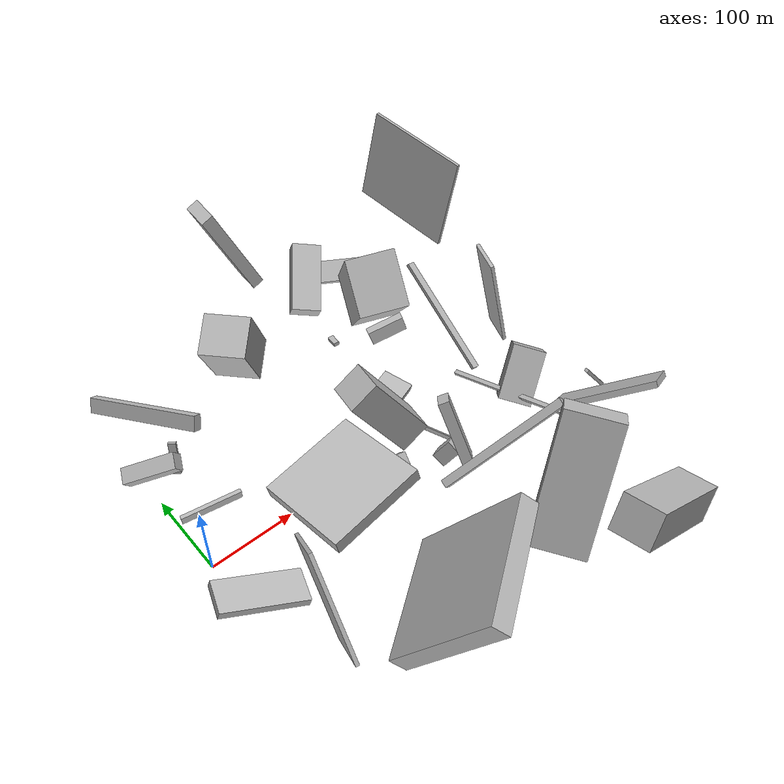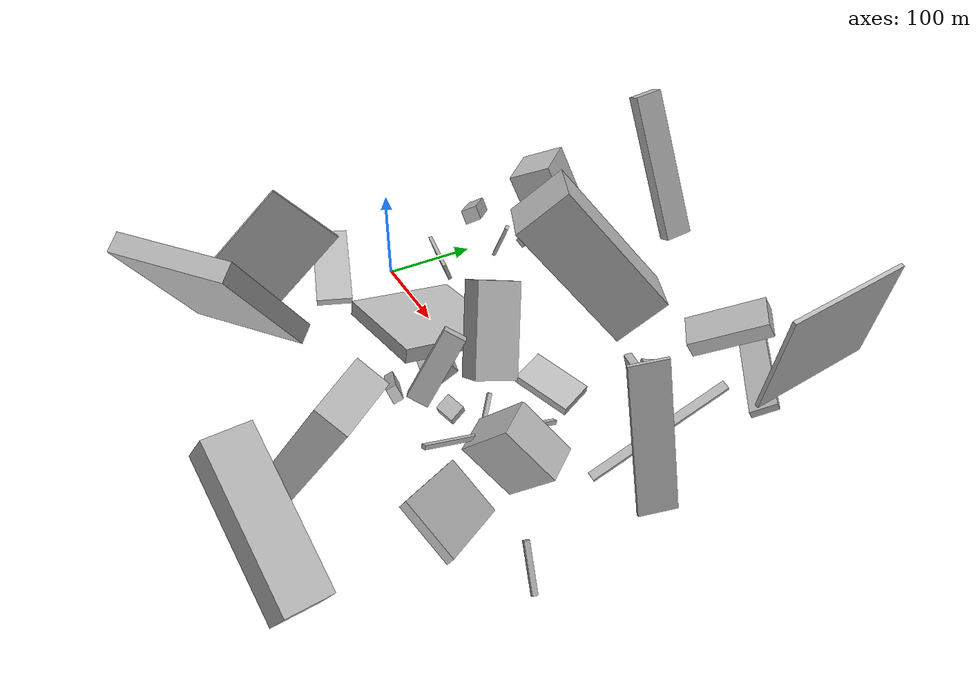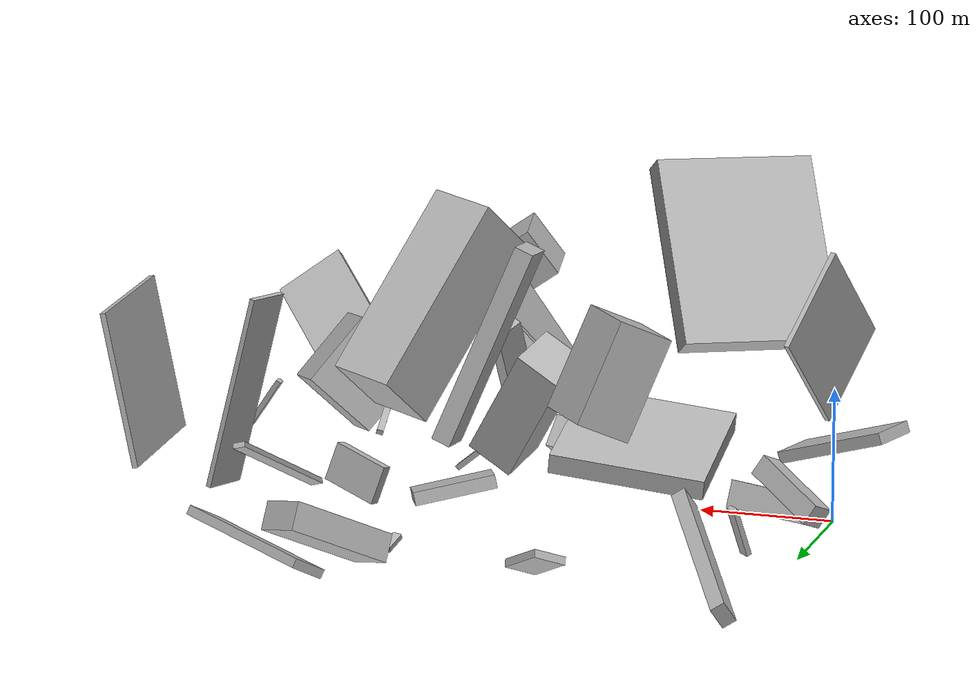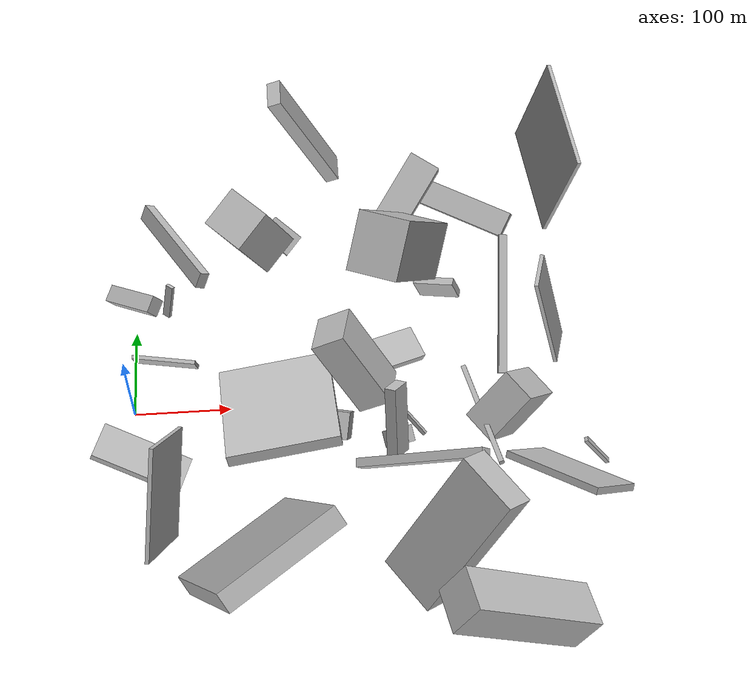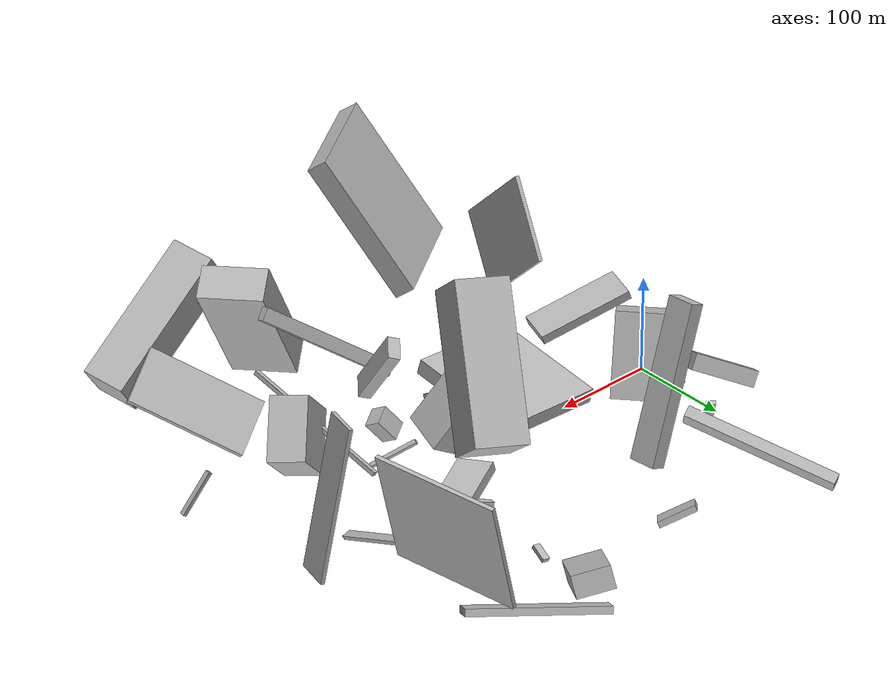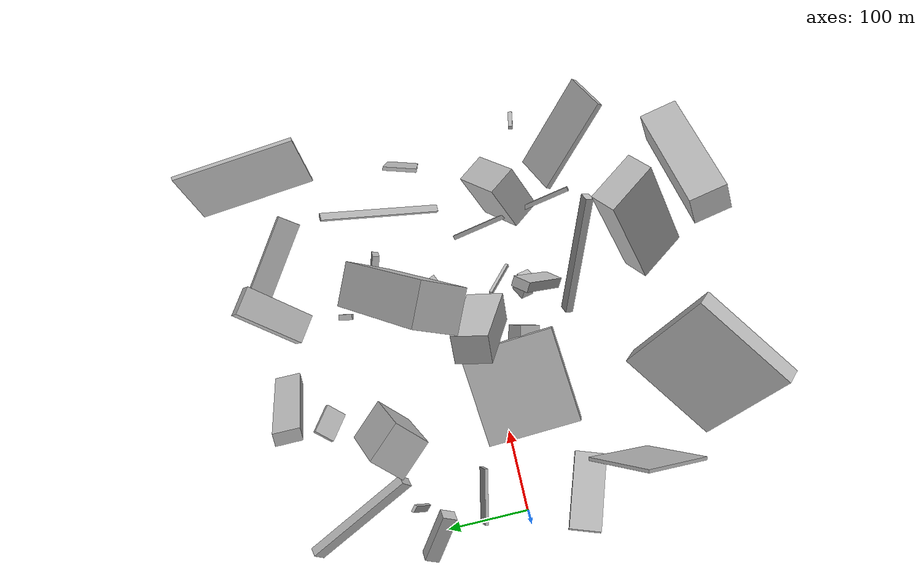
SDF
<sdf version="1.6">
 <world name="default">
  <scene>
   <sky><clouds><speed>12</speed></clouds></sky>
   <ambient>0.4 0.4 0.4 1</ambient>
   <background>0.7 0.7 0.7 1</background>
   <shadows>1</shadows>
  </scene>
  <gravity>0 0 -9.8066</gravity>
  <magnetic_field>6e-06 2.3e-05 -4.2e-05</magnetic_field>
  <physics default="0" name="default_physics" type="ode">
   <ode>
    <solver>
     <type>quick</type>
     <iters>10</iters>
     <sor>1.0</sor>
     <use_dynamic_moi_rescaling>0</use_dynamic_moi_rescaling>
    </solver>
    <constraints>
     <cfm>0</cfm>
     <erp>0.2</erp>
     <contact_max_correcting_vel>100</contact_max_correcting_vel>
     <contact_surface_layer>0.001</contact_surface_layer>
    </constraints>
   </ode>
   <max_step_size>0.004</max_step_size>
   <real_time_factor>1</real_time_factor>
   <real_time_update_rate>250</real_time_update_rate>
  </physics>
  <light name="sun" type="directional">
   <pose>0 0 10 0 0 0</pose>
   <diffuse>0.8 0.8 0.8 1</diffuse>
   <specular>0.2 0.2 0.2 1</specular>
   <attenuation>
    <range>1000</range>
    <constant>0.9</constant>
    <linear>0.01</linear>
    <quadratic>0.001</quadratic>
   </attenuation>
   <direction>-0.5 0.1 -0.9</direction>
  </light>
  <model name="building_1">
   <static>0</static>
   <pose>302.7162178413823 241.01590232890726 44.38932893676258 -2.902365559307003 -0.44359918086445965 0.9013394924459838</pose>
   <link name="link">
    <gravity>0</gravity>
    <pose>0 0 10.5 0 0 0</pose>
    <collision name="collision"><geometry><box><size>86 36 21</size></box></geometry></collision>
    <visual name="visual">
     <cast_shadows>0</cast_shadows>
     <geometry><box><size>86 36 21</size></box></geometry>
     <material>
      <script>
       <uri>model://HANNAS_wall/materials/scripts</uri>
       <uri>model://HANNAS_wall/materials/textures</uri>
       <name>vrc/HANNAS_wall</name>
      </script>
     </material>
    </visual>
   </link>
  </model>
  <model name="building_2">
   <static>0</static>
   <pose>292.9335709970639 -173.6135576637166 95.51728140433362 1.7060306095663793 -0.9956699623884142 0.500943199258239</pose>
   <link name="link">
    <gravity>0</gravity>
    <pose>0 0 31.5 0 0 0</pose>
    <collision name="collision"><geometry><box><size>150 33 63</size></box></geometry></collision>
    <visual name="visual">
     <cast_shadows>0</cast_shadows>
     <geometry><box><size>150 33 63</size></box></geometry>
     <material>
      <script>
       <uri>model://HANNAS_wall/materials/scripts</uri>
       <uri>model://HANNAS_wall/materials/textures</uri>
       <name>vrc/HANNAS_wall</name>
      </script>
     </material>
    </visual>
   </link>
  </model>
  <model name="building_3">
   <static>0</static>
   <pose>108.250264848496 -191.85583025716107 75.37563221815003 -0.5998151161141145 0.04529181704644182 -2.5248433843970703</pose>
   <link name="link">
    <gravity>0</gravity>
    <pose>0 0 75.0 0 0 0</pose>
    <collision name="collision"><geometry><box><size>125 20 150</size></box></geometry></collision>
    <visual name="visual">
     <cast_shadows>0</cast_shadows>
     <geometry><box><size>125 20 150</size></box></geometry>
     <material>
      <script>
       <uri>model://HANNAS_wall/materials/scripts</uri>
       <uri>model://HANNAS_wall/materials/textures</uri>
       <name>vrc/HANNAS_wall</name>
      </script>
     </material>
    </visual>
   </link>
  </model>
  <model name="building_4">
   <static>0</static>
   <pose>161.3359869374908 209.520294318713 18.49053893777691 2.6842150982529867 0.36401803303622693 -2.3480619277715666</pose>
   <link name="link">
    <gravity>0</gravity>
    <pose>0 0 3.0 0 0 0</pose>
    <collision name="collision"><geometry><box><size>26 37 6</size></box></geometry></collision>
    <visual name="visual">
     <cast_shadows>0</cast_shadows>
     <geometry><box><size>26 37 6</size></box></geometry>
     <material>
      <script>
       <uri>model://HANNAS_wall/materials/scripts</uri>
       <uri>model://HANNAS_wall/materials/textures</uri>
       <name>vrc/HANNAS_wall</name>
      </script>
     </material>
    </visual>
   </link>
  </model>
  <model name="building_5">
   <static>0</static>
   <pose>205.2655500838673 -54.13351261544445 24.35102530227648 0.1326448733024573 -0.9701547154076232 -1.9265548579887706</pose>
   <link name="link">
    <gravity>0</gravity>
    <pose>0 0 14.0 0 0 0</pose>
    <collision name="collision"><geometry><box><size>25 32 28</size></box></geometry></collision>
    <visual name="visual">
     <cast_shadows>0</cast_shadows>
     <geometry><box><size>25 32 28</size></box></geometry>
     <material>
      <script>
       <uri>model://HANNAS_wall/materials/scripts</uri>
       <uri>model://HANNAS_wall/materials/textures</uri>
       <name>vrc/HANNAS_wall</name>
      </script>
     </material>
    </visual>
   </link>
  </model>
  <model name="building_6">
   <static>0</static>
   <pose>148.10769394676794 31.116583684082627 29.28322589035719 -0.5602564760390539 -1.346978368066522 2.204196110590336</pose>
   <link name="link">
    <gravity>0</gravity>
    <pose>0 0 57.5 0 0 0</pose>
    <collision name="collision"><geometry><box><size>15 116 115</size></box></geometry></collision>
    <visual name="visual">
     <cast_shadows>0</cast_shadows>
     <geometry><box><size>15 116 115</size></box></geometry>
     <material>
      <script>
       <uri>model://HANNAS_wall/materials/scripts</uri>
       <uri>model://HANNAS_wall/materials/textures</uri>
       <name>vrc/HANNAS_wall</name>
      </script>
     </material>
    </visual>
   </link>
  </model>
  <model name="building_7">
   <static>0</static>
   <pose>246.38568938136544 5.6856705602654625 81.63812656405128 2.1430466931723364 -0.23602771377892645 -1.7809673171588272</pose>
   <link name="link">
    <gravity>0</gravity>
    <pose>0 0 18.5 0 0 0</pose>
    <collision name="collision"><geometry><box><size>44 96 37</size></box></geometry></collision>
    <visual name="visual">
     <cast_shadows>0</cast_shadows>
     <geometry><box><size>44 96 37</size></box></geometry>
     <material>
      <script>
       <uri>model://HANNAS_wall/materials/scripts</uri>
       <uri>model://HANNAS_wall/materials/textures</uri>
       <name>vrc/HANNAS_wall</name>
      </script>
     </material>
    </visual>
   </link>
  </model>
  <model name="building_8">
   <static>0</static>
   <pose>361.5080734168912 -249.57497258874136 75.27403421988694 1.387160893105382 -0.9438212615000647 0.3315941093290841</pose>
   <link name="link">
    <gravity>0</gravity>
    <pose>0 0 22.5 0 0 0</pose>
    <collision name="collision"><geometry><box><size>41 150 45</size></box></geometry></collision>
    <visual name="visual">
     <cast_shadows>0</cast_shadows>
     <geometry><box><size>41 150 45</size></box></geometry>
     <material>
      <script>
       <uri>model://HANNAS_wall/materials/scripts</uri>
       <uri>model://HANNAS_wall/materials/textures</uri>
       <name>vrc/HANNAS_wall</name>
      </script>
     </material>
    </visual>
   </link>
  </model>
  <model name="building_9">
   <static>0</static>
   <pose>144.271741674375 141.05816768258543 98.68790981412013 0.4364650986038138 -0.024673798803720566 -0.8231511181272085</pose>
   <link name="link">
    <gravity>0</gravity>
    <pose>0 0 39.5 0 0 0</pose>
    <collision name="collision"><geometry><box><size>49 44 79</size></box></geometry></collision>
    <visual name="visual">
     <cast_shadows>0</cast_shadows>
     <geometry><box><size>49 44 79</size></box></geometry>
     <material>
      <script>
       <uri>model://HANNAS_wall/materials/scripts</uri>
       <uri>model://HANNAS_wall/materials/textures</uri>
       <name>vrc/HANNAS_wall</name>
      </script>
     </material>
    </visual>
   </link>
  </model>
  <model name="building_10">
   <static>0</static>
   <pose>284.47600972906247 -32.08731425602233 17.480578366958273 -2.244910018783308 -0.8155858425216458 0.0974620588663942</pose>
   <link name="link">
    <gravity>0</gravity>
    <pose>0 0 2.0 0 0 0</pose>
    <collision name="collision"><geometry><box><size>4 49 4</size></box></geometry></collision>
    <visual name="visual">
     <cast_shadows>0</cast_shadows>
     <geometry><box><size>4 49 4</size></box></geometry>
     <material>
      <script>
       <uri>model://HANNAS_wall/materials/scripts</uri>
       <uri>model://HANNAS_wall/materials/textures</uri>
       <name>vrc/HANNAS_wall</name>
      </script>
     </material>
    </visual>
   </link>
  </model>
  <model name="building_11">
   <static>0</static>
   <pose>433.00837355612003 52.79903836393758 76.62054983826607 1.3394015480919081 -0.0735480670114432 1.2871735322263957</pose>
   <link name="link">
    <gravity>0</gravity>
    <pose>0 0 2.0 0 0 0</pose>
    <collision name="collision"><geometry><box><size>37 150 4</size></box></geometry></collision>
    <visual name="visual">
     <cast_shadows>0</cast_shadows>
     <geometry><box><size>37 150 4</size></box></geometry>
     <material>
      <script>
       <uri>model://HANNAS_wall/materials/scripts</uri>
       <uri>model://HANNAS_wall/materials/textures</uri>
       <name>vrc/HANNAS_wall</name>
      </script>
     </material>
    </visual>
   </link>
  </model>
  <model name="building_12">
   <static>0</static>
   <pose>426.823543539417 -139.7803070604047 80.99842091398868 0.6080393082296806 -0.5960556789041367 -2.7482518101059674</pose>
   <link name="link">
    <gravity>0</gravity>
    <pose>0 0 3.5 0 0 0</pose>
    <collision name="collision"><geometry><box><size>55 115 7</size></box></geometry></collision>
    <visual name="visual">
     <cast_shadows>0</cast_shadows>
     <geometry><box><size>55 115 7</size></box></geometry>
     <material>
      <script>
       <uri>model://HANNAS_wall/materials/scripts</uri>
       <uri>model://HANNAS_wall/materials/textures</uri>
       <name>vrc/HANNAS_wall</name>
      </script>
     </material>
    </visual>
   </link>
  </model>
  <model name="building_13">
   <static>0</static>
   <pose>330.5395586814878 115.66253531808869 26.442098687629755 0.1848036161673816 -0.2775254316448853 -0.3306662051917016</pose>
   <link name="link">
    <gravity>0</gravity>
    <pose>0 0 14.5 0 0 0</pose>
    <collision name="collision"><geometry><box><size>44 8 29</size></box></geometry></collision>
    <visual name="visual">
     <cast_shadows>0</cast_shadows>
     <geometry><box><size>44 8 29</size></box></geometry>
     <material>
      <script>
       <uri>model://HANNAS_wall/materials/scripts</uri>
       <uri>model://HANNAS_wall/materials/textures</uri>
       <name>vrc/HANNAS_wall</name>
      </script>
     </material>
    </visual>
   </link>
  </model>
  <model name="building_14">
   <static>0</static>
   <pose>-20.53171304835159 125.55125011897982 40.69571973885292 0.7919973872937769 0.9995951452825004 0.2544798049285915</pose>
   <link name="link">
    <gravity>0</gravity>
    <pose>0 0 31.5 0 0 0</pose>
    <collision name="collision"><geometry><box><size>16 18 63</size></box></geometry></collision>
    <visual name="visual">
     <cast_shadows>0</cast_shadows>
     <geometry><box><size>16 18 63</size></box></geometry>
     <material>
      <script>
       <uri>model://HANNAS_wall/materials/scripts</uri>
       <uri>model://HANNAS_wall/materials/textures</uri>
       <name>vrc/HANNAS_wall</name>
      </script>
     </material>
    </visual>
   </link>
  </model>
  <model name="building_15">
   <static>0</static>
   <pose>470.3070909318038 -85.50957176207488 28.05705256677411 1.482220991835117 -0.6141145727496541 -0.08085972045624701</pose>
   <link name="link">
    <gravity>0</gravity>
    <pose>0 0 2.5 0 0 0</pose>
    <collision name="collision"><geometry><box><size>4 46 5</size></box></geometry></collision>
    <visual name="visual">
     <cast_shadows>0</cast_shadows>
     <geometry><box><size>4 46 5</size></box></geometry>
     <material>
      <script>
       <uri>model://HANNAS_wall/materials/scripts</uri>
       <uri>model://HANNAS_wall/materials/textures</uri>
       <name>vrc/HANNAS_wall</name>
      </script>
     </material>
    </visual>
   </link>
  </model>
  <model name="building_16">
   <static>0</static>
   <pose>45.7416427044005 202.2061873092834 33.903610482558754 2.568423381923317 -0.27424522251184946 -1.1014512368931244</pose>
   <link name="link">
    <gravity>0</gravity>
    <pose>0 0 9.0 0 0 0</pose>
    <collision name="collision"><geometry><box><size>150 11 18</size></box></geometry></collision>
    <visual name="visual">
     <cast_shadows>0</cast_shadows>
     <geometry><box><size>150 11 18</size></box></geometry>
     <material>
      <script>
       <uri>model://HANNAS_wall/materials/scripts</uri>
       <uri>model://HANNAS_wall/materials/textures</uri>
       <name>vrc/HANNAS_wall</name>
      </script>
     </material>
    </visual>
   </link>
  </model>
  <model name="building_17">
   <static>0</static>
   <pose>273.2910713831262 -62.77349947613483 77.66295593839939 1.0719575307928317 -0.3296650243358767 -0.5175769989059161</pose>
   <link name="link">
    <gravity>0</gravity>
    <pose>0 0 11.0 0 0 0</pose>
    <collision name="collision"><geometry><box><size>12 74 22</size></box></geometry></collision>
    <visual name="visual">
     <cast_shadows>0</cast_shadows>
     <geometry><box><size>12 74 22</size></box></geometry>
     <material>
      <script>
       <uri>model://HANNAS_wall/materials/scripts</uri>
       <uri>model://HANNAS_wall/materials/textures</uri>
       <name>vrc/HANNAS_wall</name>
      </script>
     </material>
    </visual>
   </link>
  </model>
  <model name="building_18">
   <static>0</static>
   <pose>304.7893405166565 123.73551604940906 103.71495758486199 0.6916003294935116 -0.09834661973000725 -0.42915233180533013</pose>
   <link name="link">
    <gravity>0</gravity>
    <pose>0 0 75.0 0 0 0</pose>
    <collision name="collision"><geometry><box><size>51 59 150</size></box></geometry></collision>
    <visual name="visual">
     <cast_shadows>0</cast_shadows>
     <geometry><box><size>51 59 150</size></box></geometry>
     <material>
      <script>
       <uri>model://HANNAS_wall/materials/scripts</uri>
       <uri>model://HANNAS_wall/materials/textures</uri>
       <name>vrc/HANNAS_wall</name>
      </script>
     </material>
    </visual>
   </link>
  </model>
  <model name="building_19">
   <static>0</static>
   <pose>51.68278212122985 -118.06964472557259 68.90257271486912 -0.14494426809918895 -0.768745136852167 1.4192970706169488</pose>
   <link name="link">
    <gravity>0</gravity>
    <pose>0 0 42.0 0 0 0</pose>
    <collision name="collision"><geometry><box><size>110 4 84</size></box></geometry></collision>
    <visual name="visual">
     <cast_shadows>0</cast_shadows>
     <geometry><box><size>110 4 84</size></box></geometry>
     <material>
      <script>
       <uri>model://HANNAS_wall/materials/scripts</uri>
       <uri>model://HANNAS_wall/materials/textures</uri>
       <name>vrc/HANNAS_wall</name>
      </script>
     </material>
    </visual>
   </link>
  </model>
  <model name="building_20">
   <static>0</static>
   <pose>280.02617236332327 164.46293278042953 5.394723097998718 1.4581363560871825 0.3236718594439845 1.3716907141481518</pose>
   <link name="link">
    <gravity>0</gravity>
    <pose>0 0 3.5 0 0 0</pose>
    <collision name="collision"><geometry><box><size>18 4 7</size></box></geometry></collision>
    <visual name="visual">
     <cast_shadows>0</cast_shadows>
     <geometry><box><size>18 4 7</size></box></geometry>
     <material>
      <script>
       <uri>model://HANNAS_wall/materials/scripts</uri>
       <uri>model://HANNAS_wall/materials/textures</uri>
       <name>vrc/HANNAS_wall</name>
      </script>
     </material>
    </visual>
   </link>
  </model>
  <model name="building_21">
   <static>0</static>
   <pose>274.7604707585822 50.65425101580788 20.970330757645918 2.9739658225026484 -0.1933722026189595 -2.7228179310147262</pose>
   <link name="link">
    <gravity>0</gravity>
    <pose>0 0 5.0 0 0 0</pose>
    <collision name="collision"><geometry><box><size>61 36 10</size></box></geometry></collision>
    <visual name="visual">
     <cast_shadows>0</cast_shadows>
     <geometry><box><size>61 36 10</size></box></geometry>
     <material>
      <script>
       <uri>model://HANNAS_wall/materials/scripts</uri>
       <uri>model://HANNAS_wall/materials/textures</uri>
       <name>vrc/HANNAS_wall</name>
      </script>
     </material>
    </visual>
   </link>
  </model>
  <model name="building_22">
   <static>0</static>
   <pose>437.44876482089165 222.19378303165814 79.55822970996861 -0.040674566938342 -0.20538070159967234 -3.029986169634797</pose>
   <link name="link">
    <gravity>0</gravity>
    <pose>0 0 56.0 0 0 0</pose>
    <collision name="collision"><geometry><box><size>4 132 112</size></box></geometry></collision>
    <visual name="visual">
     <cast_shadows>0</cast_shadows>
     <geometry><box><size>4 132 112</size></box></geometry>
     <material>
      <script>
       <uri>model://HANNAS_wall/materials/scripts</uri>
       <uri>model://HANNAS_wall/materials/textures</uri>
       <name>vrc/HANNAS_wall</name>
      </script>
     </material>
    </visual>
   </link>
  </model>
  <model name="building_23">
   <static>0</static>
   <pose>5.641888800386965 -92.36454526140335 39.566025121173205 1.6003752347265892 -0.321039925605185 2.7973340185844786</pose>
   <link name="link">
    <gravity>0</gravity>
    <pose>0 0 19.0 0 0 0</pose>
    <collision name="collision"><geometry><box><size>94 9 38</size></box></geometry></collision>
    <visual name="visual">
     <cast_shadows>0</cast_shadows>
     <geometry><box><size>94 9 38</size></box></geometry>
     <material>
      <script>
       <uri>model://HANNAS_wall/materials/scripts</uri>
       <uri>model://HANNAS_wall/materials/textures</uri>
       <name>vrc/HANNAS_wall</name>
      </script>
     </material>
    </visual>
   </link>
  </model>
  <model name="building_24">
   <static>0</static>
   <pose>220.1578739326639 229.96633035442903 105.35983421029064 0.38725360088070926 0.09867679130289837 -1.5708088292437332</pose>
   <link name="link">
    <gravity>0</gravity>
    <pose>0 0 75.0 0 0 0</pose>
    <collision name="collision"><geometry><box><size>28 14 150</size></box></geometry></collision>
    <visual name="visual">
     <cast_shadows>0</cast_shadows>
     <geometry><box><size>28 14 150</size></box></geometry>
     <material>
      <script>
       <uri>model://HANNAS_wall/materials/scripts</uri>
       <uri>model://HANNAS_wall/materials/textures</uri>
       <name>vrc/HANNAS_wall</name>
      </script>
     </material>
    </visual>
   </link>
  </model>
  <model name="building_25">
   <static>0</static>
   <pose>286.1257218187796 -117.04226492649481 96.31939383082235 2.0073309044039322 -0.6284774811324035 -0.36205787758874736</pose>
   <link name="link">
    <gravity>0</gravity>
    <pose>0 0 4.5 0 0 0</pose>
    <collision name="collision"><geometry><box><size>150 13 9</size></box></geometry></collision>
    <visual name="visual">
     <cast_shadows>0</cast_shadows>
     <geometry><box><size>150 13 9</size></box></geometry>
     <material>
      <script>
       <uri>model://HANNAS_wall/materials/scripts</uri>
       <uri>model://HANNAS_wall/materials/textures</uri>
       <name>vrc/HANNAS_wall</name>
      </script>
     </material>
    </visual>
   </link>
  </model>
  <model name="building_26">
   <static>0</static>
   <pose>360.7987502259574 241.0977164766608 18.050606607854114 0.4902535165063244 -0.06763769132984927 -0.6082734515212134</pose>
   <link name="link">
    <gravity>0</gravity>
    <pose>0 0 3.5 0 0 0</pose>
    <collision name="collision"><geometry><box><size>130 28 7</size></box></geometry></collision>
    <visual name="visual">
     <cast_shadows>0</cast_shadows>
     <geometry><box><size>130 28 7</size></box></geometry>
     <material>
      <script>
       <uri>model://HANNAS_wall/materials/scripts</uri>
       <uri>model://HANNAS_wall/materials/textures</uri>
       <name>vrc/HANNAS_wall</name>
      </script>
     </material>
    </visual>
   </link>
  </model>
  <model name="building_27">
   <static>0</static>
   <pose>397.38351229864816 -36.36950454101886 47.25456493783146 0.1987489311026386 -0.7655294467957572 0.49998112877561796</pose>
   <link name="link">
    <gravity>0</gravity>
    <pose>0 0 30.5 0 0 0</pose>
    <collision name="collision"><geometry><box><size>61 36 61</size></box></geometry></collision>
    <visual name="visual">
     <cast_shadows>0</cast_shadows>
     <geometry><box><size>61 36 61</size></box></geometry>
     <material>
      <script>
       <uri>model://HANNAS_wall/materials/scripts</uri>
       <uri>model://HANNAS_wall/materials/textures</uri>
       <name>vrc/HANNAS_wall</name>
      </script>
     </material>
    </visual>
   </link>
  </model>
  <model name="building_28">
   <static>0</static>
   <pose>390.54036603327614 91.65042231218624 36.07491930013887 2.0921349617821994 1.057833026055398 2.0702588082254665</pose>
   <link name="link">
    <gravity>0</gravity>
    <pose>0 0 4.5 0 0 0</pose>
    <collision name="collision"><geometry><box><size>4 150 9</size></box></geometry></collision>
    <visual name="visual">
     <cast_shadows>0</cast_shadows>
     <geometry><box><size>4 150 9</size></box></geometry>
     <material>
      <script>
       <uri>model://HANNAS_wall/materials/scripts</uri>
       <uri>model://HANNAS_wall/materials/textures</uri>
       <name>vrc/HANNAS_wall</name>
      </script>
     </material>
    </visual>
   </link>
  </model>
  <model name="building_29">
   <static>0</static>
   <pose>344.102274265565 11.024312198794037 41.46532356413706 1.2166461589794157 -0.2846518761804552 0.2374129904067722</pose>
   <link name="link">
    <gravity>0</gravity>
    <pose>0 0 75.0 0 0 0</pose>
    <collision name="collision"><geometry><box><size>5 4 150</size></box></geometry></collision>
    <visual name="visual">
     <cast_shadows>0</cast_shadows>
     <geometry><box><size>5 4 150</size></box></geometry>
     <material>
      <script>
       <uri>model://HANNAS_wall/materials/scripts</uri>
       <uri>model://HANNAS_wall/materials/textures</uri>
       <name>vrc/HANNAS_wall</name>
      </script>
     </material>
    </visual>
   </link>
  </model>
  <model name="building_30">
   <static>0</static>
   <pose>35.37540811472245 123.66501137198111 25.996052040208316 1.9454829788525598 0.08064711731998085 2.433863975579469</pose>
   <link name="link">
    <gravity>0</gravity>
    <pose>0 0 2.0 0 0 0</pose>
    <collision name="collision"><geometry><box><size>9 39 4</size></box></geometry></collision>
    <visual name="visual">
     <cast_shadows>0</cast_shadows>
     <geometry><box><size>9 39 4</size></box></geometry>
     <material>
      <script>
       <uri>model://HANNAS_wall/materials/scripts</uri>
       <uri>model://HANNAS_wall/materials/textures</uri>
       <name>vrc/HANNAS_wall</name>
      </script>
     </material>
    </visual>
   </link>
  </model>
  <model name="building_31">
   <static>0</static>
   <pose>0.22951304906744507 54.83785596955761 22.435348545429058 1.4988874034574475 -0.30992055915389394 1.3794048650981805</pose>
   <link name="link">
    <gravity>0</gravity>
    <pose>0 0 34.0 0 0 0</pose>
    <collision name="collision"><geometry><box><size>4 20 68</size></box></geometry></collision>
    <visual name="visual">
     <cast_shadows>0</cast_shadows>
     <geometry><box><size>4 20 68</size></box></geometry>
     <material>
      <script>
       <uri>model://HANNAS_wall/materials/scripts</uri>
       <uri>model://HANNAS_wall/materials/textures</uri>
       <name>vrc/HANNAS_wall</name>
      </script>
     </material>
    </visual>
   </link>
  </model>
  <model name="building_32">
   <static>0</static>
   <pose>264.14535146766053 -54.990871088112584 18.467657172845268 0.560854094433067 0.4092023736416415 0.4708582717430066</pose>
   <link name="link">
    <gravity>0</gravity>
    <pose>0 0 13.0 0 0 0</pose>
    <collision name="collision"><geometry><box><size>19 17 26</size></box></geometry></collision>
    <visual name="visual">
     <cast_shadows>0</cast_shadows>
     <geometry><box><size>19 17 26</size></box></geometry>
     <material>
      <script>
       <uri>model://HANNAS_wall/materials/scripts</uri>
       <uri>model://HANNAS_wall/materials/textures</uri>
       <name>vrc/HANNAS_wall</name>
      </script>
     </material>
    </visual>
   </link>
  </model>
 </world>
</sdf>
